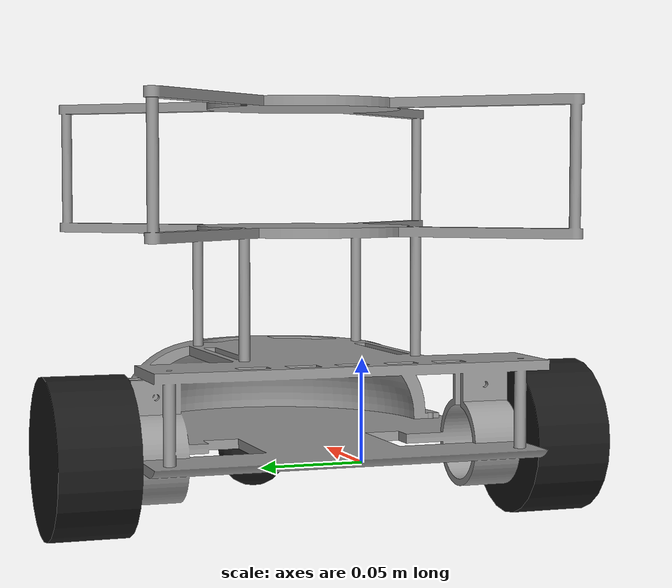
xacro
<?xml version="1.0"?>
<robot name="columbusmaximus" xmlns:xacro="http://www.ros.org/wiki/xacro">

  <xacro:property name="caster_radius" value="0.02"/>
  <xacro:property name="caster_offset_x" value="0.12"/>
  <xacro:property name="caster_offset_z" value="-0.02"/>

  <material name="black">
    <color rgba="0 0 0 1"/>
  </material>

   <material name="blue">
    <color rgba="0 0 1 1"/>
  </material>

   <material name="red ">
    <color rgba="1 0 0 1"/>
  </material>

  <material name="grey ">
    <color rgba="0.6 0.6 0.6 1"/>
  </material>

  <link name="base_link"></link>

  <joint name="chassis_joint" type="fixed">
    <parent link="base_link"/>
    <child link="chassis"/>
    <origin xyz="0.0575 0 0" rpy="0 0 0"/>
  </joint>

  <link name="chassis">
    <visual>
      <origin xyz="0.07193 -0.01172 0" rpy="0 0 ${pi/2}"/>
      <geometry>
        <mesh filename="package://columbusmaximus/meshes/Assembly_1.stl" scale="0.001 0.001 0.001"/>
      </geometry>
      <material name="grey">
        <color rgba="0.6 0.6 0.6 1"/>
      </material>
    </visual>
    <collision>
      <origin xyz="0.07193 -0.01172 0" rpy="0 0 ${pi/2}"/>
      <geometry>
        <mesh filename="package://columbusmaximus/meshes/Assembly_1.stl" scale="0.001 0.001 0.001"/>
      </geometry>
    </collision>
    <inertial>
      <mass value="0.650241"/>
      <origin xyz="0.011769 0.018593 0.045881" rpy="0 0 0"/>
      <inertia ixx="0.00475461" ixy="-0.00000053" ixz="-0.00000189"
               iyy="0.00402814" iyz="-0.00058025" izz="0.00428233"/>
    </inertial>
  </link>

  <gazebo reference="chassis">
    <material>Gazebo/Grey</material>
  </gazebo>

  <!-- ===== Left wheel===== -->
  <link name="left_wheel">
    <visual>
      <geometry>
        <cylinder radius="0.04" length="0.04"/>
      </geometry>
      <material name="black">
        <color rgba="0.1 0.1 0.1 1"/>
      </material>
    </visual>
    <collision>
      <geometry>
        <cylinder radius="0.04" length="0.04"/>
      </geometry>
    </collision>
    <inertial>
      <mass value="0.05"/>
      <origin xyz="0 0 0" rpy="0 0 0"/>
      <inertia ixx="0.00002708" ixy="0.0" ixz="0.0"
               iyy="0.00002708" iyz="0.0" izz="0.0000625"/>
    </inertial>
  </link>

  <joint name="chassis_to_left_wheel" type="continuous">
    <parent link="chassis"/>
    <child link="left_wheel"/>
    <origin xyz="0 0.122 0" rpy="-1.5708 0 0"/>
    <axis xyz="0 0 1"/>
  </joint>

  <gazebo reference="left_wheel">
    <material>Gazebo/Black</material>
  </gazebo>

  <!-- ===== Right wheel===== -->

  <link name="right_wheel">
    <visual>
      <geometry>
        <cylinder radius="0.04" length="0.04"/>
      </geometry>
      <material name="black">
        <color rgba="0.1 0.1 0.1 1"/>
      </material>
    </visual>
    <collision>
      <geometry>
        <cylinder radius="0.04" length="0.04"/>
      </geometry>
    </collision>
    <inertial>
      <mass value="0.05"/>
      <origin xyz="0 0 0" rpy="0 0 0"/>
      <inertia ixx="0.00002708" ixy="0.0" ixz="0.0"
               iyy="0.00002708" iyz="0.0" izz="0.0000625"/>
    </inertial>
  </link>

  <joint name="chassis_to_right_wheel" type="continuous">
    <parent link="chassis"/>
    <child link="right_wheel"/>
    <origin xyz="0 -0.122 0" rpy="1.5708 0 0"/>
    <axis xyz="0 0 -1"/>
  </joint>

  <joint name = "base_footprint_joint" type="fixed">
    <parent link="base_link"/>
    <child link="base_footprint"/>
    <origin xyz="0 0 0" rpy="0 0 0"/>
  </joint>

  <link name="base_footprint">
   </link>

  <gazebo reference="right_wheel">
    <material>Gazebo/Black</material>
  </gazebo>

  <!-- ===== Caster wheel===== -->
  <link name="caster_wheel">
    <visual>
      <geometry>
        <sphere radius="${caster_radius}"/>
      </geometry>
      <material name="black">
        <color rgba="0.1 0.1 0.1 1"/>
      </material>
    </visual>
    <collision>
      <geometry>
        <sphere radius="${caster_radius}"/>
      </geometry>
    </collision>
    <inertial>
      <mass value="0.5"/>
      <origin xyz="0 0 0" rpy="0 0 0"/>
      <inertia ixx="0.0000032" ixy="0.0" ixz="0.0"
               iyy="0.0000032" iyz="0.0" izz="0.0000032"/>
    </inertial>
  </link>

  <joint name="chassis_to_caster_wheel" type="fixed">
    <parent link="chassis"/>
    <child link="caster_wheel"/>
    <origin xyz="${caster_offset_x} 0 ${caster_offset_z}" rpy="0 0 0"/>
  </joint>

  <gazebo reference="caster_wheel">
    <mu1>0.001</mu1>
    <mu2>0.001</mu2>
    <material>Gazebo/Black</material>
   </gazebo>

</robot>
